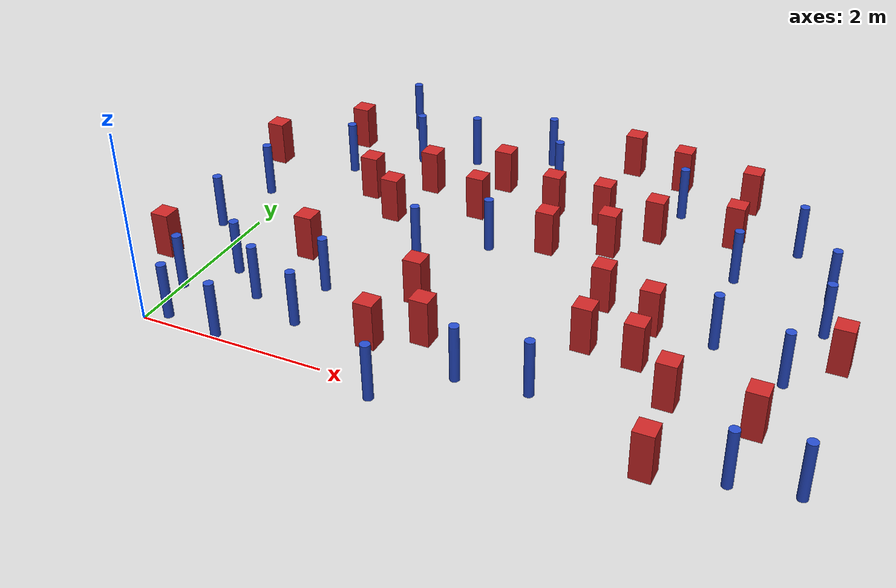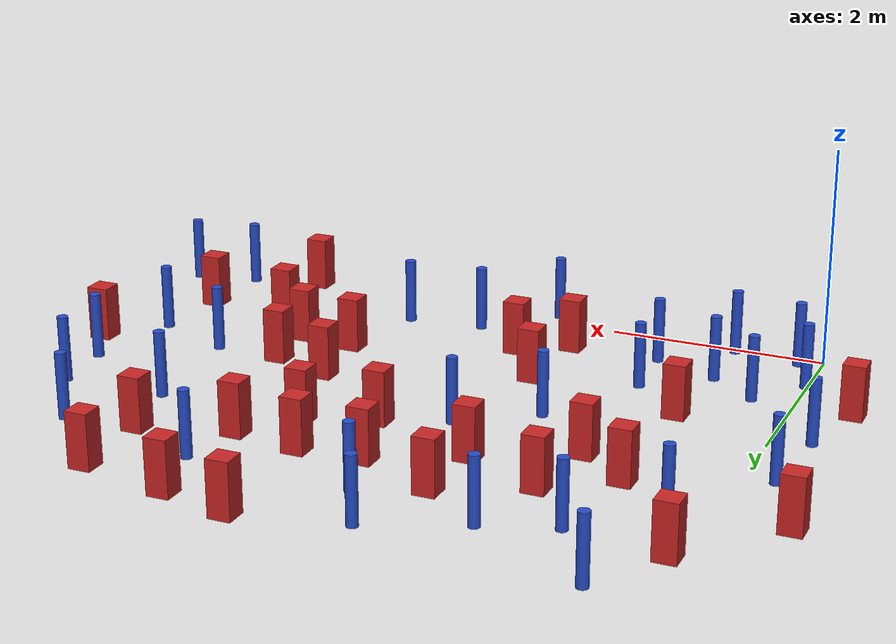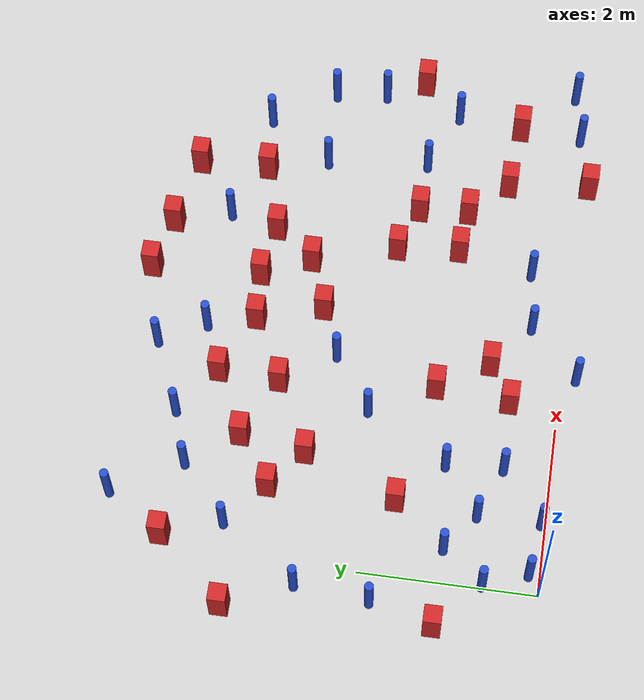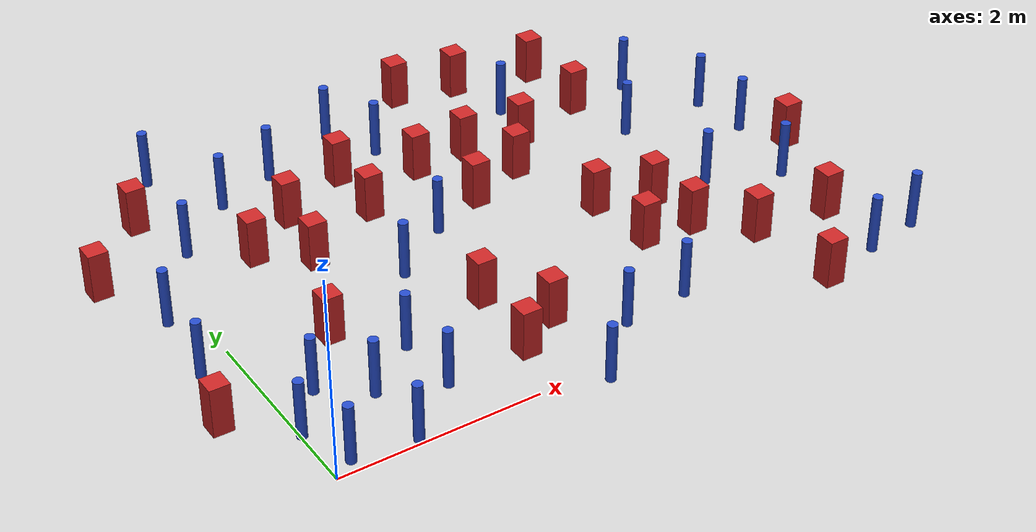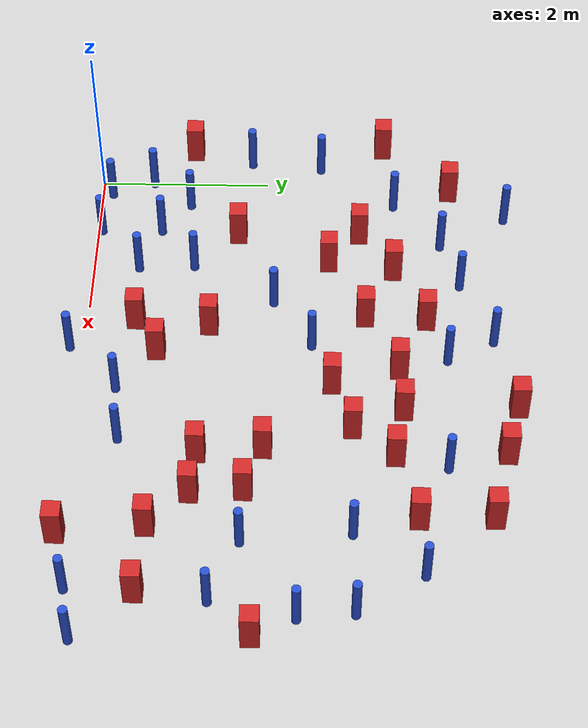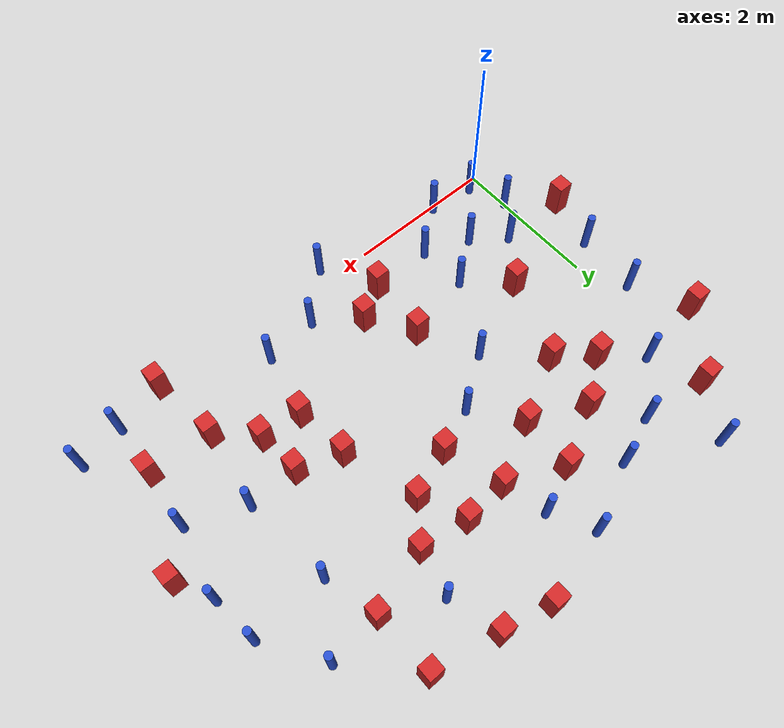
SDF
<sdf version="1.6">
 <model name="dense_80">
  <model name="pole_obstacle1">
   <static>true</static>
   <pose>0.0124947147275 0.623040329022 7.38925637345e-09 -8.47170692799e-08 1.24976764966e-08 -1.74513093023e-07</pose>
   <link name="link">
    <pose>0 0 0.3 0 -0 0</pose>
    <inertial>
     <mass>1</mass>
     <inertia><ixx>0.145833</ixx><ixy>0</ixy><ixz>0</ixz><iyy>0.145833</iyy><iyz>0</iyz><izz>0.125</izz></inertia>
    </inertial>
    <collision name="collision">
     <geometry><cylinder><radius>0.05</radius><length>.6</length></cylinder></geometry>
    </collision>
    <visual name="visual">
     <geometry><cylinder><radius>0.05</radius><length>.6</length></cylinder></geometry>
     <material>
      <script><name>Gazebo/Blue</name><uri>file://media/materials/scripts/gazebo.material</uri></script>
     </material>
    </visual>
   </link>
  </model>
  <model name="pole_obstacle8">
   <static>true</static>
   <pose>5.81876079318 0.0684140431887 7.38925637345e-09 -8.471706928e-08 1.24976765192e-08 -1.7451309301e-07</pose>
   <link name="link">
    <pose>0 0 0.3 0 -0 0</pose>
    <inertial>
     <mass>1</mass>
     <inertia><ixx>0.145833</ixx><ixy>0</ixy><ixz>0</ixz><iyy>0.145833</iyy><iyz>0</iyz><izz>0.125</izz></inertia>
    </inertial>
    <collision name="collision">
     <geometry><cylinder><radius>0.05</radius><length>.6</length></cylinder></geometry>
    </collision>
    <visual name="visual">
     <geometry><cylinder><radius>0.05</radius><length>.6</length></cylinder></geometry>
     <material>
      <script><name>Gazebo/Blue</name><uri>file://media/materials/scripts/gazebo.material</uri></script>
     </material>
    </visual>
   </link>
  </model>
  <model name="square_post_obstacle8">
   <static>true</static>
   <pose>1.29878756717 2.75642417488 1.91545236811e-07 -7.35059704564e-06 1.12565212e-07 2.39332434364e-05</pose>
   <link name="link">
    <pose>0 0 0.25 0 -0 0</pose>
    <inertial>
     <mass>100</mass>
     <inertia>
      <ixx>0.166667</ixx>
      <ixy>0</ixy>
      <ixz>0</ixz>
      <iyy>0.166667</iyy>
      <iyz>0</iyz>
      <izz>0.166667</izz>
     </inertia>
    </inertial>
    <collision name="collision"><geometry><box><size>.2 .2 .5</size></box></geometry></collision>
    <visual name="visual">
     <geometry><box><size>.2 .2 .5</size></box></geometry>
     <material>
      <script><name>Gazebo/Red</name><uri>file://media/materials/scripts/gazebo.material</uri></script>
     </material>
    </visual>
   </link>
  </model>
  <model name="square_post_obstacle11">
   <static>true</static>
   <pose>3.11903485996 2.80575910059 1.91545236811e-07 -7.35059704564e-06 1.12565212e-07 2.39332434364e-05</pose>
   <link name="link">
    <pose>0 0 0.25 0 -0 0</pose>
    <inertial>
     <mass>100</mass>
     <inertia>
      <ixx>0.166667</ixx>
      <ixy>0</ixy>
      <ixz>0</ixz>
      <iyy>0.166667</iyy>
      <iyz>0</iyz>
      <izz>0.166667</izz>
     </inertia>
    </inertial>
    <collision name="collision"><geometry><box><size>.2 .2 .5</size></box></geometry></collision>
    <visual name="visual">
     <geometry><box><size>.2 .2 .5</size></box></geometry>
     <material>
      <script><name>Gazebo/Red</name><uri>file://media/materials/scripts/gazebo.material</uri></script>
     </material>
    </visual>
   </link>
  </model>
  <model name="pole_obstacle16">
   <static>true</static>
   <pose>-0.340629063459 1.8112324864 7.38925637345e-09 -8.47170692798e-08 1.24976765025e-08 -1.74513093018e-07</pose>
   <link name="link">
    <pose>0 0 0.3 0 -0 0</pose>
    <inertial>
     <mass>1</mass>
     <inertia><ixx>0.145833</ixx><ixy>0</ixy><ixz>0</ixz><iyy>0.145833</iyy><iyz>0</iyz><izz>0.125</izz></inertia>
    </inertial>
    <collision name="collision">
     <geometry><cylinder><radius>0.05</radius><length>.6</length></cylinder></geometry>
    </collision>
    <visual name="visual">
     <geometry><cylinder><radius>0.05</radius><length>.6</length></cylinder></geometry>
     <material>
      <script><name>Gazebo/Blue</name><uri>file://media/materials/scripts/gazebo.material</uri></script>
     </material>
    </visual>
   </link>
  </model>
  <model name="square_post_obstacle20">
   <static>true</static>
   <pose>5.050717038 0.856462498009 1.91545236811e-07 -7.35059704564e-06 1.12565212e-07 2.39332434364e-05</pose>
   <link name="link">
    <pose>0 0 0.25 0 -0 0</pose>
    <inertial>
     <mass>100</mass>
     <inertia>
      <ixx>0.166667</ixx>
      <ixy>0</ixy>
      <ixz>0</ixz>
      <iyy>0.166667</iyy>
      <iyz>0</iyz>
      <izz>0.166667</izz>
     </inertia>
    </inertial>
    <collision name="collision"><geometry><box><size>.2 .2 .5</size></box></geometry></collision>
    <visual name="visual">
     <geometry><box><size>.2 .2 .5</size></box></geometry>
     <material>
      <script><name>Gazebo/Red</name><uri>file://media/materials/scripts/gazebo.material</uri></script>
     </material>
    </visual>
   </link>
  </model>
  <model name="square_post_obstacle21">
   <static>true</static>
   <pose>0.865709653987 1.68253296853 1.91545236811e-07 -7.35059704564e-06 1.12565212e-07 2.39332434364e-05</pose>
   <link name="link">
    <pose>0 0 0.25 0 -0 0</pose>
    <inertial>
     <mass>100</mass>
     <inertia>
      <ixx>0.166667</ixx>
      <ixy>0</ixy>
      <ixz>0</ixz>
      <iyy>0.166667</iyy>
      <iyz>0</iyz>
      <izz>0.166667</izz>
     </inertia>
    </inertial>
    <collision name="collision"><geometry><box><size>.2 .2 .5</size></box></geometry></collision>
    <visual name="visual">
     <geometry><box><size>.2 .2 .5</size></box></geometry>
     <material>
      <script><name>Gazebo/Red</name><uri>file://media/materials/scripts/gazebo.material</uri></script>
     </material>
    </visual>
   </link>
  </model>
  <model name="square_post_obstacle24">
   <static>true</static>
   <pose>3.47395471449 3.60048234325 1.91545236811e-07 -7.35059704564e-06 1.12565212e-07 2.39332434364e-05</pose>
   <link name="link">
    <pose>0 0 0.25 0 -0 0</pose>
    <inertial>
     <mass>100</mass>
     <inertia>
      <ixx>0.166667</ixx>
      <ixy>0</ixy>
      <ixz>0</ixz>
      <iyy>0.166667</iyy>
      <iyz>0</iyz>
      <izz>0.166667</izz>
     </inertia>
    </inertial>
    <collision name="collision"><geometry><box><size>.2 .2 .5</size></box></geometry></collision>
    <visual name="visual">
     <geometry><box><size>.2 .2 .5</size></box></geometry>
     <material>
      <script><name>Gazebo/Red</name><uri>file://media/materials/scripts/gazebo.material</uri></script>
     </material>
    </visual>
   </link>
  </model>
  <model name="square_post_obstacle25">
   <static>true</static>
   <pose>4.04534862053 4.72197150912 1.91545236811e-07 -7.35059704564e-06 1.12565212e-07 2.39332434364e-05</pose>
   <link name="link">
    <pose>0 0 0.25 0 -0 0</pose>
    <inertial>
     <mass>100</mass>
     <inertia>
      <ixx>0.166667</ixx>
      <ixy>0</ixy>
      <ixz>0</ixz>
      <iyy>0.166667</iyy>
      <iyz>0</iyz>
      <izz>0.166667</izz>
     </inertia>
    </inertial>
    <collision name="collision"><geometry><box><size>.2 .2 .5</size></box></geometry></collision>
    <visual name="visual">
     <geometry><box><size>.2 .2 .5</size></box></geometry>
     <material>
      <script><name>Gazebo/Red</name><uri>file://media/materials/scripts/gazebo.material</uri></script>
     </material>
    </visual>
   </link>
  </model>
  <model name="pole_obstacle32">
   <static>true</static>
   <pose>0.992300856398 4.07284689529 7.38925637345e-09 -8.471706928e-08 1.24976765144e-08 -1.74513093012e-07</pose>
   <link name="link">
    <pose>0 0 0.3 0 -0 0</pose>
    <inertial>
     <mass>1</mass>
     <inertia><ixx>0.145833</ixx><ixy>0</ixy><ixz>0</ixz><iyy>0.145833</iyy><iyz>0</iyz><izz>0.125</izz></inertia>
    </inertial>
    <collision name="collision">
     <geometry><cylinder><radius>0.05</radius><length>.6</length></cylinder></geometry>
    </collision>
    <visual name="visual">
     <geometry><cylinder><radius>0.05</radius><length>.6</length></cylinder></geometry>
     <material>
      <script><name>Gazebo/Blue</name><uri>file://media/materials/scripts/gazebo.material</uri></script>
     </material>
    </visual>
   </link>
  </model>
  <model name="square_post_obstacle34">
   <static>true</static>
   <pose>4.88466175146 4.54180376756 1.91545236811e-07 -7.35059704564e-06 1.12565212e-07 2.39332434364e-05</pose>
   <link name="link">
    <pose>0 0 0.25 0 -0 0</pose>
    <inertial>
     <mass>100</mass>
     <inertia>
      <ixx>0.166667</ixx>
      <ixy>0</ixy>
      <ixz>0</ixz>
      <iyy>0.166667</iyy>
      <iyz>0</iyz>
      <izz>0.166667</izz>
     </inertia>
    </inertial>
    <collision name="collision"><geometry><box><size>.2 .2 .5</size></box></geometry></collision>
    <visual name="visual">
     <geometry><box><size>.2 .2 .5</size></box></geometry>
     <material>
      <script><name>Gazebo/Red</name><uri>file://media/materials/scripts/gazebo.material</uri></script>
     </material>
    </visual>
   </link>
  </model>
  <model name="pole_obstacle57">
   <static>true</static>
   <pose>3.89834939903 0.471611564849 7.38925637345e-09 -8.47170692801e-08 1.24976765209e-08 -1.74513093011e-07</pose>
   <link name="link">
    <pose>0 0 0.3 0 -0 0</pose>
    <inertial>
     <mass>1</mass>
     <inertia><ixx>0.145833</ixx><ixy>0</ixy><ixz>0</ixz><iyy>0.145833</iyy><iyz>0</iyz><izz>0.125</izz></inertia>
    </inertial>
    <collision name="collision">
     <geometry><cylinder><radius>0.05</radius><length>.6</length></cylinder></geometry>
    </collision>
    <visual name="visual">
     <geometry><cylinder><radius>0.05</radius><length>.6</length></cylinder></geometry>
     <material>
      <script><name>Gazebo/Blue</name><uri>file://media/materials/scripts/gazebo.material</uri></script>
     </material>
    </visual>
   </link>
  </model>
  <model name="square_post_obstacle44">
   <static>true</static>
   <pose>2.29198382454 1.40110998466 1.91545236811e-07 -7.35059704564e-06 1.12565212e-07 2.39332434364e-05</pose>
   <link name="link">
    <pose>0 0 0.25 0 -0 0</pose>
    <inertial>
     <mass>100</mass>
     <inertia>
      <ixx>0.166667</ixx>
      <ixy>0</ixy>
      <ixz>0</ixz>
      <iyy>0.166667</iyy>
      <iyz>0</iyz>
      <izz>0.166667</izz>
     </inertia>
    </inertial>
    <collision name="collision"><geometry><box><size>.2 .2 .5</size></box></geometry></collision>
    <visual name="visual">
     <geometry><box><size>.2 .2 .5</size></box></geometry>
     <material>
      <script><name>Gazebo/Red</name><uri>file://media/materials/scripts/gazebo.material</uri></script>
     </material>
    </visual>
   </link>
  </model>
  <model name="pole_obstacle70">
   <static>true</static>
   <pose>2.61512561731 -0.169626297726 7.38925637345e-09 -8.471706928e-08 1.24976765208e-08 -1.7451309301e-07</pose>
   <link name="link">
    <pose>0 0 0.3 0 -0 0</pose>
    <inertial>
     <mass>1</mass>
     <inertia><ixx>0.145833</ixx><ixy>0</ixy><ixz>0</ixz><iyy>0.145833</iyy><iyz>0</iyz><izz>0.125</izz></inertia>
    </inertial>
    <collision name="collision">
     <geometry><cylinder><radius>0.05</radius><length>.6</length></cylinder></geometry>
    </collision>
    <visual name="visual">
     <geometry><cylinder><radius>0.05</radius><length>.6</length></cylinder></geometry>
     <material>
      <script><name>Gazebo/Blue</name><uri>file://media/materials/scripts/gazebo.material</uri></script>
     </material>
    </visual>
   </link>
  </model>
  <model name="square_post_obstacle61">
   <static>true</static>
   <pose>2.21870142798 0.555596916005 1.91545236811e-07 -7.35059704564e-06 1.12565212e-07 2.39332434364e-05</pose>
   <link name="link">
    <pose>0 0 0.25 0 -0 0</pose>
    <inertial>
     <mass>100</mass>
     <inertia>
      <ixx>0.166667</ixx>
      <ixy>0</ixy>
      <ixz>0</ixz>
      <iyy>0.166667</iyy>
      <iyz>0</iyz>
      <izz>0.166667</izz>
     </inertia>
    </inertial>
    <collision name="collision"><geometry><box><size>.2 .2 .5</size></box></geometry></collision>
    <visual name="visual">
     <geometry><box><size>.2 .2 .5</size></box></geometry>
     <material>
      <script><name>Gazebo/Red</name><uri>file://media/materials/scripts/gazebo.material</uri></script>
     </material>
    </visual>
   </link>
  </model>
  <model name="pole_obstacle74">
   <static>true</static>
   <pose>1.6143871549 4.2832349217 7.38925637345e-09 -8.47170692799e-08 1.24976765033e-08 -1.74513093018e-07</pose>
   <link name="link">
    <pose>0 0 0.3 0 -0 0</pose>
    <inertial>
     <mass>1</mass>
     <inertia><ixx>0.145833</ixx><ixy>0</ixy><ixz>0</ixz><iyy>0.145833</iyy><iyz>0</iyz><izz>0.125</izz></inertia>
    </inertial>
    <collision name="collision">
     <geometry><cylinder><radius>0.05</radius><length>.6</length></cylinder></geometry>
    </collision>
    <visual name="visual">
     <geometry><cylinder><radius>0.05</radius><length>.6</length></cylinder></geometry>
     <material>
      <script><name>Gazebo/Blue</name><uri>file://media/materials/scripts/gazebo.material</uri></script>
     </material>
    </visual>
   </link>
  </model>
  <model name="pole_obstacle76">
   <static>true</static>
   <pose>3.19816486732 0.395554763302 7.38925637345e-09 -8.471706928e-08 1.24976765172e-08 -1.74513093013e-07</pose>
   <link name="link">
    <pose>0 0 0.3 0 -0 0</pose>
    <inertial>
     <mass>1</mass>
     <inertia><ixx>0.145833</ixx><ixy>0</ixy><ixz>0</ixz><iyy>0.145833</iyy><iyz>0</iyz><izz>0.125</izz></inertia>
    </inertial>
    <collision name="collision">
     <geometry><cylinder><radius>0.05</radius><length>.6</length></cylinder></geometry>
    </collision>
    <visual name="visual">
     <geometry><cylinder><radius>0.05</radius><length>.6</length></cylinder></geometry>
     <material>
      <script><name>Gazebo/Blue</name><uri>file://media/materials/scripts/gazebo.material</uri></script>
     </material>
    </visual>
   </link>
  </model>
  <model name="square_post_obstacle73">
   <static>true</static>
   <pose>0.849298990074 3.11304717606 1.91545236811e-07 -7.35059704564e-06 1.12565212e-07 2.39332434364e-05</pose>
   <link name="link">
    <pose>0 0 0.25 0 -0 0</pose>
    <inertial>
     <mass>100</mass>
     <inertia>
      <ixx>0.166667</ixx>
      <ixy>0</ixy>
      <ixz>0</ixz>
      <iyy>0.166667</iyy>
      <iyz>0</iyz>
      <izz>0.166667</izz>
     </inertia>
    </inertial>
    <collision name="collision"><geometry><box><size>.2 .2 .5</size></box></geometry></collision>
    <visual name="visual">
     <geometry><box><size>.2 .2 .5</size></box></geometry>
     <material>
      <script><name>Gazebo/Red</name><uri>file://media/materials/scripts/gazebo.material</uri></script>
     </material>
    </visual>
   </link>
  </model>
  <model name="pole_obstacle88">
   <static>true</static>
   <pose>1.39824187825 0.532559908431 7.38925637345e-09 -8.47170692799e-08 1.24976765051e-08 -1.74513093017e-07</pose>
   <link name="link">
    <pose>0 0 0.3 0 -0 0</pose>
    <inertial>
     <mass>1</mass>
     <inertia><ixx>0.145833</ixx><ixy>0</ixy><ixz>0</ixz><iyy>0.145833</iyy><iyz>0</iyz><izz>0.125</izz></inertia>
    </inertial>
    <collision name="collision">
     <geometry><cylinder><radius>0.05</radius><length>.6</length></cylinder></geometry>
    </collision>
    <visual name="visual">
     <geometry><cylinder><radius>0.05</radius><length>.6</length></cylinder></geometry>
     <material>
      <script><name>Gazebo/Blue</name><uri>file://media/materials/scripts/gazebo.material</uri></script>
     </material>
    </visual>
   </link>
  </model>
  <model name="square_post_obstacle77">
   <static>true</static>
   <pose>0.12801445875 4.19459039145 1.91545236811e-07 -7.35059704564e-06 1.12565212e-07 2.39332434364e-05</pose>
   <link name="link">
    <pose>0 0 0.25 0 -0 0</pose>
    <inertial>
     <mass>100</mass>
     <inertia>
      <ixx>0.166667</ixx>
      <ixy>0</ixy>
      <ixz>0</ixz>
      <iyy>0.166667</iyy>
      <iyz>0</iyz>
      <izz>0.166667</izz>
     </inertia>
    </inertial>
    <collision name="collision"><geometry><box><size>.2 .2 .5</size></box></geometry></collision>
    <visual name="visual">
     <geometry><box><size>.2 .2 .5</size></box></geometry>
     <material>
      <script><name>Gazebo/Red</name><uri>file://media/materials/scripts/gazebo.material</uri></script>
     </material>
    </visual>
   </link>
  </model>
  <model name="square_post_obstacle81">
   <static>true</static>
   <pose>2.66585608434 0.818674959784 1.91545236811e-07 -7.35059704564e-06 1.12565212e-07 2.39332434364e-05</pose>
   <link name="link">
    <pose>0 0 0.25 0 -0 0</pose>
    <inertial>
     <mass>100</mass>
     <inertia>
      <ixx>0.166667</ixx>
      <ixy>0</ixy>
      <ixz>0</ixz>
      <iyy>0.166667</iyy>
      <iyz>0</iyz>
      <izz>0.166667</izz>
     </inertia>
    </inertial>
    <collision name="collision"><geometry><box><size>.2 .2 .5</size></box></geometry></collision>
    <visual name="visual">
     <geometry><box><size>.2 .2 .5</size></box></geometry>
     <material>
      <script><name>Gazebo/Red</name><uri>file://media/materials/scripts/gazebo.material</uri></script>
     </material>
    </visual>
   </link>
  </model>
  <model name="square_post_obstacle84">
   <static>true</static>
   <pose>4.09072070267 1.34215857867 1.91545236811e-07 -7.35059704564e-06 1.12565212e-07 2.39332434364e-05</pose>
   <link name="link">
    <pose>0 0 0.25 0 -0 0</pose>
    <inertial>
     <mass>100</mass>
     <inertia>
      <ixx>0.166667</ixx>
      <ixy>0</ixy>
      <ixz>0</ixz>
      <iyy>0.166667</iyy>
      <iyz>0</iyz>
      <izz>0.166667</izz>
     </inertia>
    </inertial>
    <collision name="collision"><geometry><box><size>.2 .2 .5</size></box></geometry></collision>
    <visual name="visual">
     <geometry><box><size>.2 .2 .5</size></box></geometry>
     <material>
      <script><name>Gazebo/Red</name><uri>file://media/materials/scripts/gazebo.material</uri></script>
     </material>
    </visual>
   </link>
  </model>
  <model name="pole_obstacle93">
   <static>true</static>
   <pose>0.349221355884 3.52798118626 7.38925637345e-09 -8.471706928e-08 1.24976765084e-08 -1.74513093017e-07</pose>
   <link name="link">
    <pose>0 0 0.3 0 -0 0</pose>
    <inertial>
     <mass>1</mass>
     <inertia><ixx>0.145833</ixx><ixy>0</ixy><ixz>0</ixz><iyy>0.145833</iyy><iyz>0</iyz><izz>0.125</izz></inertia>
    </inertial>
    <collision name="collision">
     <geometry><cylinder><radius>0.05</radius><length>.6</length></cylinder></geometry>
    </collision>
    <visual name="visual">
     <geometry><cylinder><radius>0.05</radius><length>.6</length></cylinder></geometry>
     <material>
      <script><name>Gazebo/Blue</name><uri>file://media/materials/scripts/gazebo.material</uri></script>
     </material>
    </visual>
   </link>
  </model>
  <model name="pole_obstacle96">
   <static>true</static>
   <pose>1.36179086106 1.18065942514 7.38925637345e-09 -8.471706928e-08 1.24976765079e-08 -1.74513093017e-07</pose>
   <link name="link">
    <pose>0 0 0.3 0 -0 0</pose>
    <inertial>
     <mass>1</mass>
     <inertia><ixx>0.145833</ixx><ixy>0</ixy><ixz>0</ixz><iyy>0.145833</iyy><iyz>0</iyz><izz>0.125</izz></inertia>
    </inertial>
    <collision name="collision">
     <geometry><cylinder><radius>0.05</radius><length>.6</length></cylinder></geometry>
    </collision>
    <visual name="visual">
     <geometry><cylinder><radius>0.05</radius><length>.6</length></cylinder></geometry>
     <material>
      <script><name>Gazebo/Blue</name><uri>file://media/materials/scripts/gazebo.material</uri></script>
     </material>
    </visual>
   </link>
  </model>
  <model name="square_post_obstacle93">
   <static>true</static>
   <pose>4.91069095418 3.73931372454 1.91545236811e-07 -7.35059704564e-06 1.12565212e-07 2.39332434364e-05</pose>
   <link name="link">
    <pose>0 0 0.25 0 -0 0</pose>
    <inertial>
     <mass>100</mass>
     <inertia>
      <ixx>0.166667</ixx>
      <ixy>0</ixy>
      <ixz>0</ixz>
      <iyy>0.166667</iyy>
      <iyz>0</iyz>
      <izz>0.166667</izz>
     </inertia>
    </inertial>
    <collision name="collision"><geometry><box><size>.2 .2 .5</size></box></geometry></collision>
    <visual name="visual">
     <geometry><box><size>.2 .2 .5</size></box></geometry>
     <material>
      <script><name>Gazebo/Red</name><uri>file://media/materials/scripts/gazebo.material</uri></script>
     </material>
    </visual>
   </link>
  </model>
  <model name="square_post_obstacle102">
   <static>true</static>
   <pose>2.13735632605 3.18171864107 1.91545236811e-07 -7.35059704564e-06 1.12565212e-07 2.39332434364e-05</pose>
   <link name="link">
    <pose>0 0 0.25 0 -0 0</pose>
    <inertial>
     <mass>100</mass>
     <inertia>
      <ixx>0.166667</ixx>
      <ixy>0</ixy>
      <ixz>0</ixz>
      <iyy>0.166667</iyy>
      <iyz>0</iyz>
      <izz>0.166667</izz>
     </inertia>
    </inertial>
    <collision name="collision"><geometry><box><size>.2 .2 .5</size></box></geometry></collision>
    <visual name="visual">
     <geometry><box><size>.2 .2 .5</size></box></geometry>
     <material>
      <script><name>Gazebo/Red</name><uri>file://media/materials/scripts/gazebo.material</uri></script>
     </material>
    </visual>
   </link>
  </model>
  <model name="pole_obstacle109">
   <static>true</static>
   <pose>5.59062107229 3.79712545104 7.38925637345e-09 -8.47170692798e-08 1.24976764937e-08 -1.74513093023e-07</pose>
   <link name="link">
    <pose>0 0 0.3 0 -0 0</pose>
    <inertial>
     <mass>1</mass>
     <inertia><ixx>0.145833</ixx><ixy>0</ixy><ixz>0</ixz><iyy>0.145833</iyy><iyz>0</iyz><izz>0.125</izz></inertia>
    </inertial>
    <collision name="collision">
     <geometry><cylinder><radius>0.05</radius><length>.6</length></cylinder></geometry>
    </collision>
    <visual name="visual">
     <geometry><cylinder><radius>0.05</radius><length>.6</length></cylinder></geometry>
     <material>
      <script><name>Gazebo/Blue</name><uri>file://media/materials/scripts/gazebo.material</uri></script>
     </material>
    </visual>
   </link>
  </model>
  <model name="square_post_obstacle114">
   <static>true</static>
   <pose>-0.591307790971 3.40807365381 1.91545236811e-07 -7.35059704564e-06 1.12565212e-07 2.39332434364e-05</pose>
   <link name="link">
    <pose>0 0 0.25 0 -0 0</pose>
    <inertial>
     <mass>100</mass>
     <inertia>
      <ixx>0.166667</ixx>
      <ixy>0</ixy>
      <ixz>0</ixz>
      <iyy>0.166667</iyy>
      <iyz>0</iyz>
      <izz>0.166667</izz>
     </inertia>
    </inertial>
    <collision name="collision"><geometry><box><size>.2 .2 .5</size></box></geometry></collision>
    <visual name="visual">
     <geometry><box><size>.2 .2 .5</size></box></geometry>
     <material>
      <script><name>Gazebo/Red</name><uri>file://media/materials/scripts/gazebo.material</uri></script>
     </material>
    </visual>
   </link>
  </model>
  <model name="square_post_obstacle115">
   <static>true</static>
   <pose>5.85704405423 0.792932591989 1.91545236811e-07 -7.35059704564e-06 1.12565212e-07 2.39332434364e-05</pose>
   <link name="link">
    <pose>0 0 0.25 0 -0 0</pose>
    <inertial>
     <mass>100</mass>
     <inertia>
      <ixx>0.166667</ixx>
      <ixy>0</ixy>
      <ixz>0</ixz>
      <iyy>0.166667</iyy>
      <iyz>0</iyz>
      <izz>0.166667</izz>
     </inertia>
    </inertial>
    <collision name="collision"><geometry><box><size>.2 .2 .5</size></box></geometry></collision>
    <visual name="visual">
     <geometry><box><size>.2 .2 .5</size></box></geometry>
     <material>
      <script><name>Gazebo/Red</name><uri>file://media/materials/scripts/gazebo.material</uri></script>
     </material>
    </visual>
   </link>
  </model>
  <model name="pole_obstacle116">
   <static>true</static>
   <pose>-0.260102825469 2.65175239321 7.38925637345e-09 -8.471706928e-08 1.24976765139e-08 -1.74513093014e-07</pose>
   <link name="link">
    <pose>0 0 0.3 0 -0 0</pose>
    <inertial>
     <mass>1</mass>
     <inertia><ixx>0.145833</ixx><ixy>0</ixy><ixz>0</ixz><iyy>0.145833</iyy><iyz>0</iyz><izz>0.125</izz></inertia>
    </inertial>
    <collision name="collision">
     <geometry><cylinder><radius>0.05</radius><length>.6</length></cylinder></geometry>
    </collision>
    <visual name="visual">
     <geometry><cylinder><radius>0.05</radius><length>.6</length></cylinder></geometry>
     <material>
      <script><name>Gazebo/Blue</name><uri>file://media/materials/scripts/gazebo.material</uri></script>
     </material>
    </visual>
   </link>
  </model>
  <model name="square_post_obstacle118">
   <static>true</static>
   <pose>5.15334759942 -0.0833712169399 1.91545236811e-07 -7.35059704564e-06 1.12565212e-07 2.39332434364e-05</pose>
   <link name="link">
    <pose>0 0 0.25 0 -0 0</pose>
    <inertial>
     <mass>100</mass>
     <inertia>
      <ixx>0.166667</ixx>
      <ixy>0</ixy>
      <ixz>0</ixz>
      <iyy>0.166667</iyy>
      <iyz>0</iyz>
      <izz>0.166667</izz>
     </inertia>
    </inertial>
    <collision name="collision"><geometry><box><size>.2 .2 .5</size></box></geometry></collision>
    <visual name="visual">
     <geometry><box><size>.2 .2 .5</size></box></geometry>
     <material>
      <script><name>Gazebo/Red</name><uri>file://media/materials/scripts/gazebo.material</uri></script>
     </material>
    </visual>
   </link>
  </model>
  <model name="pole_obstacle129">
   <static>true</static>
   <pose>5.93803016133 1.55037709091 7.38925637345e-09 -8.471706928e-08 1.24976765134e-08 -1.74513093015e-07</pose>
   <link name="link">
    <pose>0 0 0.3 0 -0 0</pose>
    <inertial>
     <mass>1</mass>
     <inertia><ixx>0.145833</ixx><ixy>0</ixy><ixz>0</ixz><iyy>0.145833</iyy><iyz>0</iyz><izz>0.125</izz></inertia>
    </inertial>
    <collision name="collision">
     <geometry><cylinder><radius>0.05</radius><length>.6</length></cylinder></geometry>
    </collision>
    <visual name="visual">
     <geometry><cylinder><radius>0.05</radius><length>.6</length></cylinder></geometry>
     <material>
      <script><name>Gazebo/Blue</name><uri>file://media/materials/scripts/gazebo.material</uri></script>
     </material>
    </visual>
   </link>
  </model>
  <model name="pole_obstacle132">
   <static>true</static>
   <pose>2.73510532201 4.11237364212 7.38925637345e-09 -8.47170692798e-08 1.24976765033e-08 -1.74513093019e-07</pose>
   <link name="link">
    <pose>0 0 0.3 0 -0 0</pose>
    <inertial>
     <mass>1</mass>
     <inertia><ixx>0.145833</ixx><ixy>0</ixy><ixz>0</ixz><iyy>0.145833</iyy><iyz>0</iyz><izz>0.125</izz></inertia>
    </inertial>
    <collision name="collision">
     <geometry><cylinder><radius>0.05</radius><length>.6</length></cylinder></geometry>
    </collision>
    <visual name="visual">
     <geometry><cylinder><radius>0.05</radius><length>.6</length></cylinder></geometry>
     <material>
      <script><name>Gazebo/Blue</name><uri>file://media/materials/scripts/gazebo.material</uri></script>
     </material>
    </visual>
   </link>
  </model>
  <model name="pole_obstacle135">
   <static>true</static>
   <pose>0.372882364056 1.08765149797 7.38925637345e-09 -8.47170692798e-08 1.24976765025e-08 -1.74513093018e-07</pose>
   <link name="link">
    <pose>0 0 0.3 0 -0 0</pose>
    <inertial>
     <mass>1</mass>
     <inertia><ixx>0.145833</ixx><ixy>0</ixy><ixz>0</ixz><iyy>0.145833</iyy><iyz>0</iyz><izz>0.125</izz></inertia>
    </inertial>
    <collision name="collision">
     <geometry><cylinder><radius>0.05</radius><length>.6</length></cylinder></geometry>
    </collision>
    <visual name="visual">
     <geometry><cylinder><radius>0.05</radius><length>.6</length></cylinder></geometry>
     <material>
      <script><name>Gazebo/Blue</name><uri>file://media/materials/scripts/gazebo.material</uri></script>
     </material>
    </visual>
   </link>
  </model>
  <model name="square_post_obstacle133">
   <static>true</static>
   <pose>3.41253947796 4.87228864916 1.91545236811e-07 -7.35059704564e-06 1.12565212e-07 2.39332434364e-05</pose>
   <link name="link">
    <pose>0 0 0.25 0 -0 0</pose>
    <inertial>
     <mass>100</mass>
     <inertia>
      <ixx>0.166667</ixx>
      <ixy>0</ixy>
      <ixz>0</ixz>
      <iyy>0.166667</iyy>
      <iyz>0</iyz>
      <izz>0.166667</izz>
     </inertia>
    </inertial>
    <collision name="collision"><geometry><box><size>.2 .2 .5</size></box></geometry></collision>
    <visual name="visual">
     <geometry><box><size>.2 .2 .5</size></box></geometry>
     <material>
      <script><name>Gazebo/Red</name><uri>file://media/materials/scripts/gazebo.material</uri></script>
     </material>
    </visual>
   </link>
  </model>
  <model name="pole_obstacle138">
   <static>true</static>
   <pose>5.21124114447 1.85469773715 7.38925637345e-09 -8.471706928e-08 1.24976765134e-08 -1.74513093015e-07</pose>
   <link name="link">
    <pose>0 0 0.3 0 -0 0</pose>
    <inertial>
     <mass>1</mass>
     <inertia><ixx>0.145833</ixx><ixy>0</ixy><ixz>0</ixz><iyy>0.145833</iyy><iyz>0</iyz><izz>0.125</izz></inertia>
    </inertial>
    <collision name="collision">
     <geometry><cylinder><radius>0.05</radius><length>.6</length></cylinder></geometry>
    </collision>
    <visual name="visual">
     <geometry><cylinder><radius>0.05</radius><length>.6</length></cylinder></geometry>
     <material>
      <script><name>Gazebo/Blue</name><uri>file://media/materials/scripts/gazebo.material</uri></script>
     </material>
    </visual>
   </link>
  </model>
  <model name="pole_obstacle148">
   <static>true</static>
   <pose>6.0606092011 3.07383645956 7.38925637345e-09 -8.47170692798e-08 1.24976764937e-08 -1.74513093023e-07</pose>
   <link name="link">
    <pose>0 0 0.3 0 -0 0</pose>
    <inertial>
     <mass>1</mass>
     <inertia><ixx>0.145833</ixx><ixy>0</ixy><ixz>0</ixz><iyy>0.145833</iyy><iyz>0</iyz><izz>0.125</izz></inertia>
    </inertial>
    <collision name="collision">
     <geometry><cylinder><radius>0.05</radius><length>.6</length></cylinder></geometry>
    </collision>
    <visual name="visual">
     <geometry><cylinder><radius>0.05</radius><length>.6</length></cylinder></geometry>
     <material>
      <script><name>Gazebo/Blue</name><uri>file://media/materials/scripts/gazebo.material</uri></script>
     </material>
    </visual>
   </link>
  </model>
  <model name="square_post_obstacle165">
   <static>true</static>
   <pose>4.01994350826 2.06260012082 1.91545236811e-07 -7.35059704564e-06 1.12565212e-07 2.39332434364e-05</pose>
   <link name="link">
    <pose>0 0 0.25 0 -0 0</pose>
    <inertial>
     <mass>100</mass>
     <inertia>
      <ixx>0.166667</ixx>
      <ixy>0</ixy>
      <ixz>0</ixz>
      <iyy>0.166667</iyy>
      <iyz>0</iyz>
      <izz>0.166667</izz>
     </inertia>
    </inertial>
    <collision name="collision"><geometry><box><size>.2 .2 .5</size></box></geometry></collision>
    <visual name="visual">
     <geometry><box><size>.2 .2 .5</size></box></geometry>
     <material>
      <script><name>Gazebo/Red</name><uri>file://media/materials/scripts/gazebo.material</uri></script>
     </material>
    </visual>
   </link>
  </model>
  <model name="square_post_obstacle167">
   <static>true</static>
   <pose>4.57509815485 1.87101891292 1.91545236811e-07 -7.35059704564e-06 1.12565212e-07 2.39332434364e-05</pose>
   <link name="link">
    <pose>0 0 0.25 0 -0 0</pose>
    <inertial>
     <mass>100</mass>
     <inertia>
      <ixx>0.166667</ixx>
      <ixy>0</ixy>
      <ixz>0</ixz>
      <iyy>0.166667</iyy>
      <iyz>0</iyz>
      <izz>0.166667</izz>
     </inertia>
    </inertial>
    <collision name="collision"><geometry><box><size>.2 .2 .5</size></box></geometry></collision>
    <visual name="visual">
     <geometry><box><size>.2 .2 .5</size></box></geometry>
     <material>
      <script><name>Gazebo/Red</name><uri>file://media/materials/scripts/gazebo.material</uri></script>
     </material>
    </visual>
   </link>
  </model>
  <model name="square_post_obstacle174">
   <static>true</static>
   <pose>1.41731749386 3.50843459891 1.91545236811e-07 -7.35059704564e-06 1.12565212e-07 2.39332434364e-05</pose>
   <link name="link">
    <pose>0 0 0.25 0 -0 0</pose>
    <inertial>
     <mass>100</mass>
     <inertia>
      <ixx>0.166667</ixx>
      <ixy>0</ixy>
      <ixz>0</ixz>
      <iyy>0.166667</iyy>
      <iyz>0</iyz>
      <izz>0.166667</izz>
     </inertia>
    </inertial>
    <collision name="collision"><geometry><box><size>.2 .2 .5</size></box></geometry></collision>
    <visual name="visual">
     <geometry><box><size>.2 .2 .5</size></box></geometry>
     <material>
      <script><name>Gazebo/Red</name><uri>file://media/materials/scripts/gazebo.material</uri></script>
     </material>
    </visual>
   </link>
  </model>
  <model name="pole_obstacle177">
   <static>true</static>
   <pose>1.90437619206 2.12844670781 7.38925637345e-09 -8.47170692799e-08 1.24976765053e-08 -1.74513093017e-07</pose>
   <link name="link">
    <pose>0 0 0.3 0 -0 0</pose>
    <inertial>
     <mass>1</mass>
     <inertia><ixx>0.145833</ixx><ixy>0</ixy><ixz>0</ixz><iyy>0.145833</iyy><iyz>0</iyz><izz>0.125</izz></inertia>
    </inertial>
    <collision name="collision">
     <geometry><cylinder><radius>0.05</radius><length>.6</length></cylinder></geometry>
    </collision>
    <visual name="visual">
     <geometry><cylinder><radius>0.05</radius><length>.6</length></cylinder></geometry>
     <material>
      <script><name>Gazebo/Blue</name><uri>file://media/materials/scripts/gazebo.material</uri></script>
     </material>
    </visual>
   </link>
  </model>
  <model name="square_post_obstacle176">
   <static>true</static>
   <pose>-0.517954680762 1.10375994769 1.91545236811e-07 -7.35059704564e-06 1.12565212e-07 2.39332434364e-05</pose>
   <link name="link">
    <pose>0 0 0.25 0 -0 0</pose>
    <inertial>
     <mass>100</mass>
     <inertia>
      <ixx>0.166667</ixx>
      <ixy>0</ixy>
      <ixz>0</ixz>
      <iyy>0.166667</iyy>
      <iyz>0</iyz>
      <izz>0.166667</izz>
     </inertia>
    </inertial>
    <collision name="collision"><geometry><box><size>.2 .2 .5</size></box></geometry></collision>
    <visual name="visual">
     <geometry><box><size>.2 .2 .5</size></box></geometry>
     <material>
      <script><name>Gazebo/Red</name><uri>file://media/materials/scripts/gazebo.material</uri></script>
     </material>
    </visual>
   </link>
  </model>
  <model name="square_post_obstacle182">
   <static>true</static>
   <pose>6.35492816936 2.00564149812 1.91545236811e-07 -7.35059704564e-06 1.12565212e-07 2.39332434364e-05</pose>
   <link name="link">
    <pose>0 0 0.25 0 -0 0</pose>
    <inertial>
     <mass>100</mass>
     <inertia>
      <ixx>0.166667</ixx>
      <ixy>0</ixy>
      <ixz>0</ixz>
      <iyy>0.166667</iyy>
      <iyz>0</iyz>
      <izz>0.166667</izz>
     </inertia>
    </inertial>
    <collision name="collision"><geometry><box><size>.2 .2 .5</size></box></geometry></collision>
    <visual name="visual">
     <geometry><box><size>.2 .2 .5</size></box></geometry>
     <material>
      <script><name>Gazebo/Red</name><uri>file://media/materials/scripts/gazebo.material</uri></script>
     </material>
    </visual>
   </link>
  </model>
  <model name="pole_obstacle186">
   <static>true</static>
   <pose>6.12707917852 2.46583057717 7.38925637345e-09 -8.47170692798e-08 1.24976764937e-08 -1.74513093023e-07</pose>
   <link name="link">
    <pose>0 0 0.3 0 -0 0</pose>
    <inertial>
     <mass>1</mass>
     <inertia><ixx>0.145833</ixx><ixy>0</ixy><ixz>0</ixz><iyy>0.145833</iyy><iyz>0</iyz><izz>0.125</izz></inertia>
    </inertial>
    <collision name="collision">
     <geometry><cylinder><radius>0.05</radius><length>.6</length></cylinder></geometry>
    </collision>
    <visual name="visual">
     <geometry><cylinder><radius>0.05</radius><length>.6</length></cylinder></geometry>
     <material>
      <script><name>Gazebo/Blue</name><uri>file://media/materials/scripts/gazebo.material</uri></script>
     </material>
    </visual>
   </link>
  </model>
  <model name="square_post_obstacle194">
   <static>true</static>
   <pose>4.615592289 1.2922080645 1.91545236811e-07 -7.35059704564e-06 1.12565212e-07 2.39332434364e-05</pose>
   <link name="link">
    <pose>0 0 0.25 0 -0 0</pose>
    <inertial>
     <mass>100</mass>
     <inertia>
      <ixx>0.166667</ixx>
      <ixy>0</ixy>
      <ixz>0</ixz>
      <iyy>0.166667</iyy>
      <iyz>0</iyz>
      <izz>0.166667</izz>
     </inertia>
    </inertial>
    <collision name="collision"><geometry><box><size>.2 .2 .5</size></box></geometry></collision>
    <visual name="visual">
     <geometry><box><size>.2 .2 .5</size></box></geometry>
     <material>
      <script><name>Gazebo/Red</name><uri>file://media/materials/scripts/gazebo.material</uri></script>
     </material>
    </visual>
   </link>
  </model>
  <model name="pole_obstacle192">
   <static>true</static>
   <pose>0.811229155196 0.0514346113665 7.38925637345e-09 -8.471706928e-08 1.24976765065e-08 -1.74513093017e-07</pose>
   <link name="link">
    <pose>0 0 0.3 0 -0 0</pose>
    <inertial>
     <mass>1</mass>
     <inertia><ixx>0.145833</ixx><ixy>0</ixy><ixz>0</ixz><iyy>0.145833</iyy><iyz>0</iyz><izz>0.125</izz></inertia>
    </inertial>
    <collision name="collision">
     <geometry><cylinder><radius>0.05</radius><length>.6</length></cylinder></geometry>
    </collision>
    <visual name="visual">
     <geometry><cylinder><radius>0.05</radius><length>.6</length></cylinder></geometry>
     <material>
      <script><name>Gazebo/Blue</name><uri>file://media/materials/scripts/gazebo.material</uri></script>
     </material>
    </visual>
   </link>
  </model>
  <model name="square_post_obstacle202">
   <static>true</static>
   <pose>3.73139322403 3.03430531291 1.91545236811e-07 -7.35059704564e-06 1.12565212e-07 2.39332434364e-05</pose>
   <link name="link">
    <pose>0 0 0.25 0 -0 0</pose>
    <inertial>
     <mass>100</mass>
     <inertia>
      <ixx>0.166667</ixx>
      <ixy>0</ixy>
      <ixz>0</ixz>
      <iyy>0.166667</iyy>
      <iyz>0</iyz>
      <izz>0.166667</izz>
     </inertia>
    </inertial>
    <collision name="collision"><geometry><box><size>.2 .2 .5</size></box></geometry></collision>
    <visual name="visual">
     <geometry><box><size>.2 .2 .5</size></box></geometry>
     <material>
      <script><name>Gazebo/Red</name><uri>file://media/materials/scripts/gazebo.material</uri></script>
     </material>
    </visual>
   </link>
  </model>
  <model name="pole_obstacle204">
   <static>true</static>
   <pose>6.40970457572 0.176258707297 7.38925637345e-09 -8.471706928e-08 1.24976765151e-08 -1.74513093014e-07</pose>
   <link name="link">
    <pose>0 0 0.3 0 -0 0</pose>
    <inertial>
     <mass>1</mass>
     <inertia><ixx>0.145833</ixx><ixy>0</ixy><ixz>0</ixz><iyy>0.145833</iyy><iyz>0</iyz><izz>0.125</izz></inertia>
    </inertial>
    <collision name="collision">
     <geometry><cylinder><radius>0.05</radius><length>.6</length></cylinder></geometry>
    </collision>
    <visual name="visual">
     <geometry><cylinder><radius>0.05</radius><length>.6</length></cylinder></geometry>
     <material>
      <script><name>Gazebo/Blue</name><uri>file://media/materials/scripts/gazebo.material</uri></script>
     </material>
    </visual>
   </link>
  </model>
  <model name="pole_obstacle207">
   <static>true</static>
   <pose>2.54537764187 2.57507922487 7.38925637345e-09 -8.47170692798e-08 1.24976764939e-08 -1.74513093025e-07</pose>
   <link name="link">
    <pose>0 0 0.3 0 -0 0</pose>
    <inertial>
     <mass>1</mass>
     <inertia><ixx>0.145833</ixx><ixy>0</ixy><ixz>0</ixz><iyy>0.145833</iyy><iyz>0</iyz><izz>0.125</izz></inertia>
    </inertial>
    <collision name="collision">
     <geometry><cylinder><radius>0.05</radius><length>.6</length></cylinder></geometry>
    </collision>
    <visual name="visual">
     <geometry><cylinder><radius>0.05</radius><length>.6</length></cylinder></geometry>
     <material>
      <script><name>Gazebo/Blue</name><uri>file://media/materials/scripts/gazebo.material</uri></script>
     </material>
    </visual>
   </link>
  </model>
  <model name="square_post_obstacle211">
   <static>true</static>
   <pose>2.17440684905 3.87998951506 1.91545236811e-07 -7.35059704564e-06 1.12565212e-07 2.39332434364e-05</pose>
   <link name="link">
    <pose>0 0 0.25 0 -0 0</pose>
    <inertial>
     <mass>100</mass>
     <inertia>
      <ixx>0.166667</ixx>
      <ixy>0</ixy>
      <ixz>0</ixz>
      <iyy>0.166667</iyy>
      <iyz>0</iyz>
      <izz>0.166667</izz>
     </inertia>
    </inertial>
    <collision name="collision"><geometry><box><size>.2 .2 .5</size></box></geometry></collision>
    <visual name="visual">
     <geometry><box><size>.2 .2 .5</size></box></geometry>
     <material>
      <script><name>Gazebo/Red</name><uri>file://media/materials/scripts/gazebo.material</uri></script>
     </material>
    </visual>
   </link>
  </model>
  <model name="square_post_obstacle217">
   <static>true</static>
   <pose>2.89336974919 3.55929611412 1.91545236811e-07 -7.35059704564e-06 1.12565212e-07 2.39332434364e-05</pose>
   <link name="link">
    <pose>0 0 0.25 0 -0 0</pose>
    <inertial>
     <mass>100</mass>
     <inertia>
      <ixx>0.166667</ixx>
      <ixy>0</ixy>
      <ixz>0</ixz>
      <iyy>0.166667</iyy>
      <iyz>0</iyz>
      <izz>0.166667</izz>
     </inertia>
    </inertial>
    <collision name="collision"><geometry><box><size>.2 .2 .5</size></box></geometry></collision>
    <visual name="visual">
     <geometry><box><size>.2 .2 .5</size></box></geometry>
     <material>
      <script><name>Gazebo/Red</name><uri>file://media/materials/scripts/gazebo.material</uri></script>
     </material>
    </visual>
   </link>
  </model>
  <model name="square_post_obstacle222">
   <static>true</static>
   <pose>4.09906811928 3.50298409898 1.91545236811e-07 -7.35059704564e-06 1.12565212e-07 2.39332434364e-05</pose>
   <link name="link">
    <pose>0 0 0.25 0 -0 0</pose>
    <inertial>
     <mass>100</mass>
     <inertia>
      <ixx>0.166667</ixx>
      <ixy>0</ixy>
      <ixz>0</ixz>
      <iyy>0.166667</iyy>
      <iyz>0</iyz>
      <izz>0.166667</izz>
     </inertia>
    </inertial>
    <collision name="collision"><geometry><box><size>.2 .2 .5</size></box></geometry></collision>
    <visual name="visual">
     <geometry><box><size>.2 .2 .5</size></box></geometry>
     <material>
      <script><name>Gazebo/Red</name><uri>file://media/materials/scripts/gazebo.material</uri></script>
     </material>
    </visual>
   </link>
  </model>
  <model name="pole_obstacle226">
   <static>true</static>
   <pose>5.09422000957 3.04255002078 7.38925637345e-09 -8.47170692799e-08 1.24976765028e-08 -1.74513093019e-07</pose>
   <link name="link">
    <pose>0 0 0.3 0 -0 0</pose>
    <inertial>
     <mass>1</mass>
     <inertia><ixx>0.145833</ixx><ixy>0</ixy><ixz>0</ixz><iyy>0.145833</iyy><iyz>0</iyz><izz>0.125</izz></inertia>
    </inertial>
    <collision name="collision">
     <geometry><cylinder><radius>0.05</radius><length>.6</length></cylinder></geometry>
    </collision>
    <visual name="visual">
     <geometry><cylinder><radius>0.05</radius><length>.6</length></cylinder></geometry>
     <material>
      <script><name>Gazebo/Blue</name><uri>file://media/materials/scripts/gazebo.material</uri></script>
     </material>
    </visual>
   </link>
  </model>
  <model name="pole_obstacle227">
   <static>true</static>
   <pose>0.203408009575 0.127894020781 7.38925637345e-09 -8.47170692799e-08 1.24976764995e-08 -1.7451309302e-07</pose>
   <link name="link">
    <pose>0 0 0.3 0 -0 0</pose>
    <inertial>
     <mass>1</mass>
     <inertia><ixx>0.145833</ixx><ixy>0</ixy><ixz>0</ixz><iyy>0.145833</iyy><iyz>0</iyz><izz>0.125</izz></inertia>
    </inertial>
    <collision name="collision">
     <geometry><cylinder><radius>0.05</radius><length>.6</length></cylinder></geometry>
    </collision>
    <visual name="visual">
     <geometry><cylinder><radius>0.05</radius><length>.6</length></cylinder></geometry>
     <material>
      <script><name>Gazebo/Blue</name><uri>file://media/materials/scripts/gazebo.material</uri></script>
     </material>
    </visual>
   </link>
  </model>
  <model name="pole_obstacle228">
   <static>true</static>
   <pose>0.545936009575 4.84711002078 7.38925637345e-09 -8.47170692799e-08 1.24976765073e-08 -1.74513093015e-07</pose>
   <link name="link">
    <pose>0 0 0.3 0 -0 0</pose>
    <inertial>
     <mass>1</mass>
     <inertia><ixx>0.145833</ixx><ixy>0</ixy><ixz>0</ixz><iyy>0.145833</iyy><iyz>0</iyz><izz>0.125</izz></inertia>
    </inertial>
    <collision name="collision">
     <geometry><cylinder><radius>0.05</radius><length>.6</length></cylinder></geometry>
    </collision>
    <visual name="visual">
     <geometry><cylinder><radius>0.05</radius><length>.6</length></cylinder></geometry>
     <material>
      <script><name>Gazebo/Blue</name><uri>file://media/materials/scripts/gazebo.material</uri></script>
     </material>
    </visual>
   </link>
  </model>
  <model name="pole_obstacle231">
   <static>true</static>
   <pose>4.22782000957 4.07603002078 7.38925637345e-09 -8.47170692796e-08 1.24976764786e-08 -1.74513093032e-07</pose>
   <link name="link">
    <pose>0 0 0.3 0 -0 0</pose>
    <inertial>
     <mass>1</mass>
     <inertia><ixx>0.145833</ixx><ixy>0</ixy><ixz>0</ixz><iyy>0.145833</iyy><iyz>0</iyz><izz>0.125</izz></inertia>
    </inertial>
    <collision name="collision">
     <geometry><cylinder><radius>0.05</radius><length>.6</length></cylinder></geometry>
    </collision>
    <visual name="visual">
     <geometry><cylinder><radius>0.05</radius><length>.6</length></cylinder></geometry>
     <material>
      <script><name>Gazebo/Blue</name><uri>file://media/materials/scripts/gazebo.material</uri></script>
     </material>
    </visual>
   </link>
  </model>
  <model name="pole_obstacle232">
   <static>true</static>
   <pose>0.804476009575 0.764353020781 7.38925637345e-09 -8.47170692799e-08 1.24976765045e-08 -1.74513093019e-07</pose>
   <link name="link">
    <pose>0 0 0.3 0 -0 0</pose>
    <inertial>
     <mass>1</mass>
     <inertia><ixx>0.145833</ixx><ixy>0</ixy><ixz>0</ixz><iyy>0.145833</iyy><iyz>0</iyz><izz>0.125</izz></inertia>
    </inertial>
    <collision name="collision">
     <geometry><cylinder><radius>0.05</radius><length>.6</length></cylinder></geometry>
    </collision>
    <visual name="visual">
     <geometry><cylinder><radius>0.05</radius><length>.6</length></cylinder></geometry>
     <material>
      <script><name>Gazebo/Blue</name><uri>file://media/materials/scripts/gazebo.material</uri></script>
     </material>
    </visual>
   </link>
  </model>
  <model name="pole_obstacle234">
   <static>true</static>
   <pose>2.45265000957 4.64195002078 7.38925637345e-09 -8.47170692798e-08 1.24976765033e-08 -1.74513093019e-07</pose>
   <link name="link">
    <pose>0 0 0.3 0 -0 0</pose>
    <inertial>
     <mass>1</mass>
     <inertia><ixx>0.145833</ixx><ixy>0</ixy><ixz>0</ixz><iyy>0.145833</iyy><iyz>0</iyz><izz>0.125</izz></inertia>
    </inertial>
    <collision name="collision">
     <geometry><cylinder><radius>0.05</radius><length>.6</length></cylinder></geometry>
    </collision>
    <visual name="visual">
     <geometry><cylinder><radius>0.05</radius><length>.6</length></cylinder></geometry>
     <material>
      <script><name>Gazebo/Blue</name><uri>file://media/materials/scripts/gazebo.material</uri></script>
     </material>
    </visual>
   </link>
  </model>
 </model>
</sdf>
